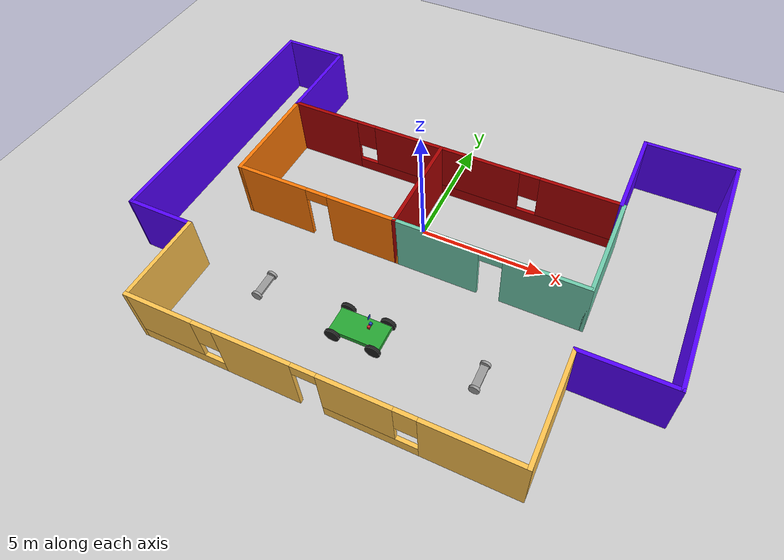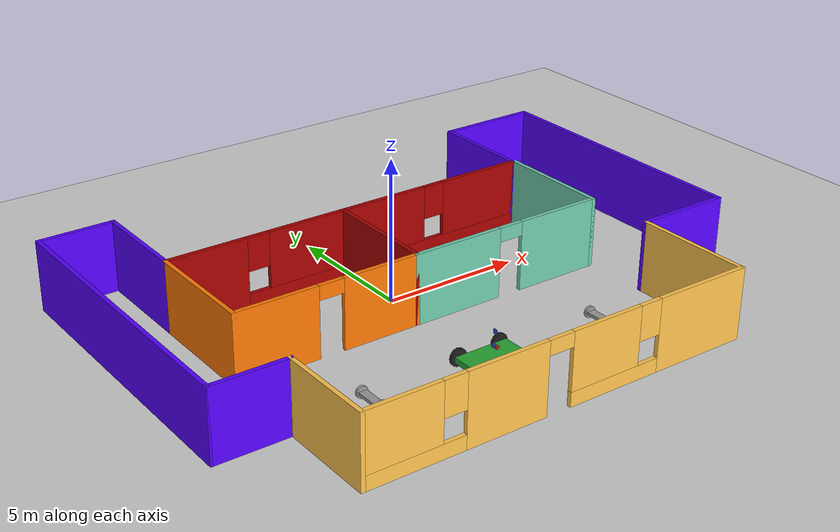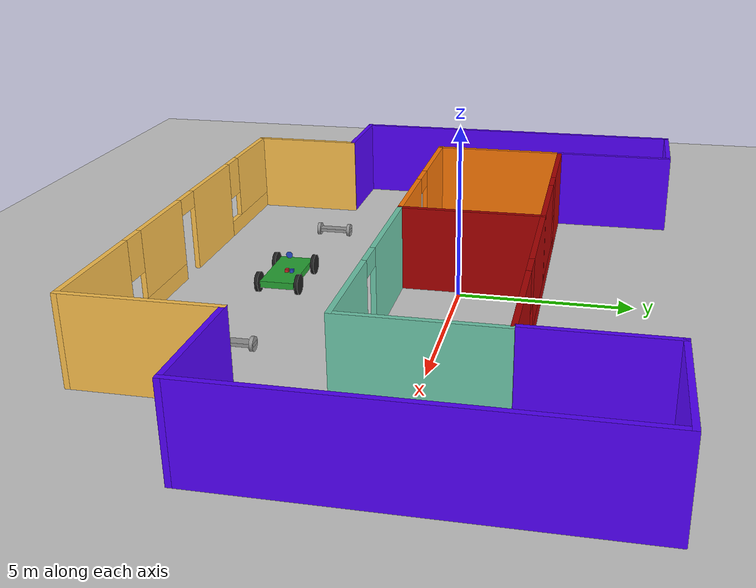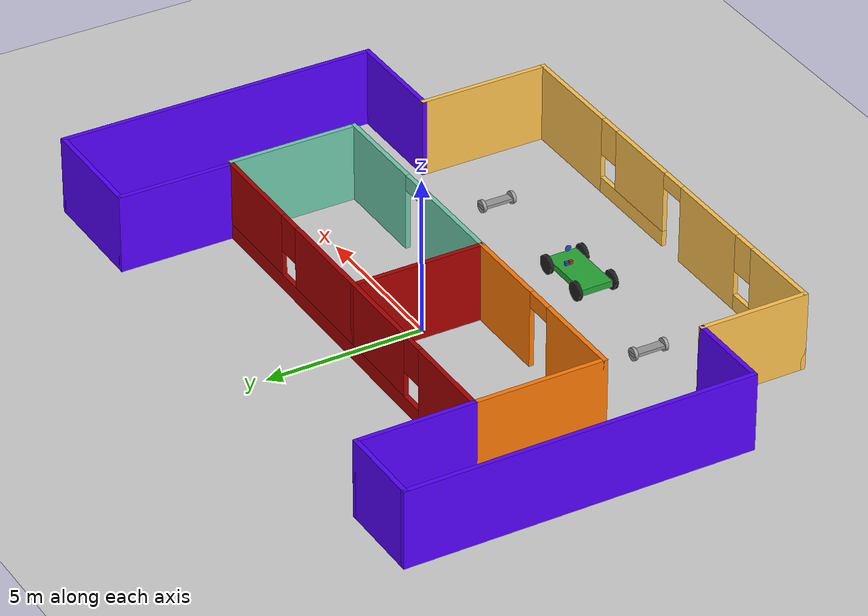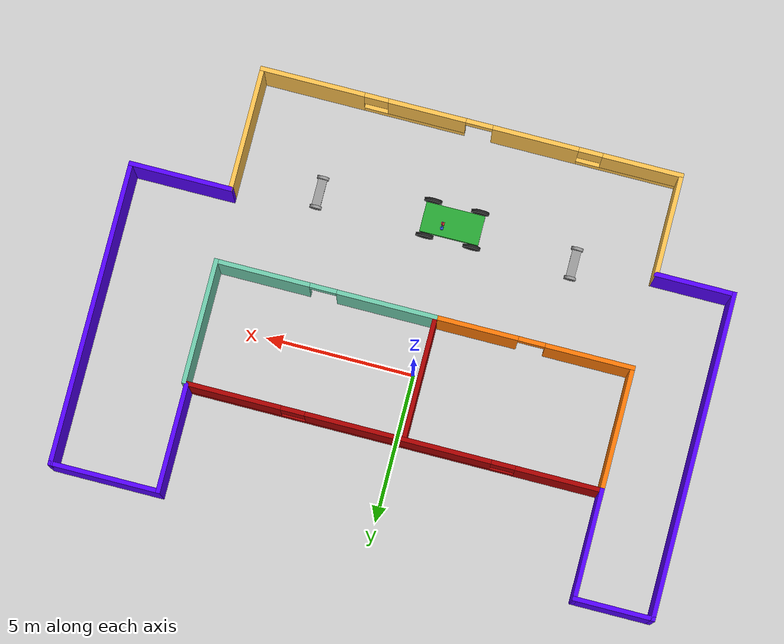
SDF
<sdf version="1.6">
 <world name="default">
  <plugin name="welcome_message" filename="libwelcome_message.so"/>
  <light name="sun" type="directional">
   <pose>0 0 10 0 -0 0</pose>
   <diffuse>0.8 0.8 0.8 1</diffuse>
   <specular>0.2 0.2 0.2 1</specular>
   <attenuation>
    <range>1000</range>
    <constant>0.9</constant>
    <linear>0.01</linear>
    <quadratic>0.001</quadratic>
   </attenuation>
   <direction>-0.5 0.1 -0.9</direction>
  </light>
  <model name="ground_plane">
   <static>1</static>
   <link name="link">
    <collision name="collision">
     <geometry><plane><normal>0 0 1</normal><size>100 100</size></plane></geometry>
     <surface>
      <contact><collide_bitmask>65535</collide_bitmask></contact>
      <friction><ode><mu>100</mu><mu2>50</mu2></ode></friction>
     </surface>
    </collision>
    <visual name="visual">
     <cast_shadows>0</cast_shadows>
     <geometry><plane><normal>0 0 1</normal><size>100 100</size></plane></geometry>
     <material>
      <script><uri>file://media/materials/scripts/gazebo.material</uri><name>Gazebo/Grey</name></script>
     </material>
    </visual>
   </link>
  </model>
  <gravity>0 0 -9.8</gravity>
  <magnetic_field>6e-06 2.3e-05 -4.2e-05</magnetic_field>
  <atmosphere type="adiabatic"/>
  <physics name="default_physics" default="0" type="ode">
   <max_step_size>0.001</max_step_size>
   <real_time_factor>1</real_time_factor>
   <real_time_update_rate>1000</real_time_update_rate>
  </physics>
  <scene><ambient>0.4 0.4 0.4 1</ambient><background>0.7 0.7 0.7 1</background><shadows>1</shadows></scene>
  <spherical_coordinates>
   <surface_model>EARTH_WGS84</surface_model>
   <latitude_deg>0</latitude_deg>
   <longitude_deg>0</longitude_deg>
   <elevation>0</elevation>
   <heading_deg>0</heading_deg>
  </spherical_coordinates>
  <model name="office">
   <pose>0.55118 -1.17371 0 0 -0 0</pose>
   <link name="Wall_1">
    <collision name="Wall_1_Collision">
     <geometry><box><size>2.75 0.15 2.5</size></box></geometry>
     <pose>0 0 1.25 0 -0 0</pose>
    </collision>
    <visual name="Wall_1_Visual">
     <pose>0 0 1.25 0 -0 0</pose>
     <geometry><box><size>2.75 0.15 2.5</size></box></geometry>
     <material>
      <script><uri>file://media/materials/scripts/gazebo.material</uri><name>Gazebo/Grey</name></script>
      <ambient>0.333333 0 1 1</ambient>
     </material>
     <meta><layer>0</layer></meta>
    </visual>
    <pose>-8.72481 7.09989 0 0 -0 0</pose>
   </link>
   <link name="Wall_10">
    <collision name="Wall_10_Collision">
     <geometry><box><size>3.5 0.15 2.5</size></box></geometry>
     <pose>0 0 1.25 0 -0 0</pose>
    </collision>
    <visual name="Wall_10_Visual">
     <pose>0 0 1.25 0 -0 0</pose>
     <geometry><box><size>3.5 0.15 2.5</size></box></geometry>
     <material>
      <script><uri>file://media/materials/scripts/gazebo.material</uri><name>Gazebo/Grey</name></script>
      <ambient>1 0.764706 0.305882 1</ambient>
     </material>
     <meta><layer>0</layer></meta>
    </visual>
    <pose>-7.42481 -5.42511 0 0 -0 1.5708</pose>
   </link>
   <link name="Wall_11">
    <collision name="Wall_11_Collision">
     <geometry><box><size>2.75 0.15 2.5</size></box></geometry>
     <pose>0 0 1.25 0 -0 0</pose>
    </collision>
    <visual name="Wall_11_Visual">
     <pose>0 0 1.25 0 -0 0</pose>
     <geometry><box><size>2.75 0.15 2.5</size></box></geometry>
     <material>
      <script><uri>file://media/materials/scripts/gazebo.material</uri><name>Gazebo/Grey</name></script>
      <ambient>0.333333 0 1 1</ambient>
     </material>
     <meta><layer>0</layer></meta>
    </visual>
    <pose>-8.725 -3.75 0 0 -0 3.14151</pose>
   </link>
   <link name="Wall_12">
    <collision name="Wall_12_Collision">
     <geometry><box><size>11 0.15 2.5</size></box></geometry>
     <pose>0 0 1.25 0 -0 0</pose>
    </collision>
    <visual name="Wall_12_Visual">
     <pose>0 0 1.25 0 -0 0</pose>
     <geometry><box><size>11 0.15 2.5</size></box></geometry>
     <material>
      <script><uri>file://media/materials/scripts/gazebo.material</uri><name>Gazebo/Grey</name></script>
      <ambient>0.333333 0 1 1</ambient>
     </material>
     <meta><layer>0</layer></meta>
    </visual>
    <pose>-10.0252 1.67511 0 0 -0 1.5708</pose>
   </link>
   <link name="Wall_14">
    <collision name="Wall_14_Collision">
     <geometry><box><size>4.25 0.15 2.5</size></box></geometry>
     <pose>0 0 1.25 0 -0 0</pose>
    </collision>
    <visual name="Wall_14_Visual">
     <pose>0 0 1.25 0 -0 0</pose>
     <geometry><box><size>4.25 0.15 2.5</size></box></geometry>
     <material>
      <script><uri>file://media/materials/scripts/gazebo.material</uri><name>Gazebo/Grey</name></script>
      <ambient>0.996078 0.47451 0.0196078 1</ambient>
     </material>
     <meta><layer>0</layer></meta>
    </visual>
    <pose>-7.42481 1.44989 0 0 0 -1.5708</pose>
   </link>
   <link name="Wall_15">
    <pose>-4.12481 -0.60011 0 0 -0 0</pose>
    <visual name="Wall_15_Visual_0">
     <pose>-1.87455 0 1.25 0 -0 0</pose>
     <geometry><box><size>3.0009 0.15 2.5</size></box></geometry>
     <material>
      <script><uri>file://media/materials/scripts/gazebo.material</uri><name>Gazebo/Grey</name></script>
      <ambient>0.996078 0.47451 0.0196078 1</ambient>
     </material>
     <meta><layer>0</layer></meta>
    </visual>
    <collision name="Wall_15_Collision_0">
     <geometry><box><size>3.0009 0.15 2.5</size></box></geometry>
     <pose>-1.87455 0 1.25 0 -0 0</pose>
    </collision>
    <visual name="Wall_15_Visual_1">
     <pose>1.95045 0 1.25 0 -0 0</pose>
     <geometry><box><size>2.8491 0.15 2.5</size></box></geometry>
     <material>
      <script><uri>file://media/materials/scripts/gazebo.material</uri><name>Gazebo/Grey</name></script>
      <ambient>0.996078 0.47451 0.0196078 1</ambient>
     </material>
     <meta><layer>0</layer></meta>
    </visual>
    <collision name="Wall_15_Collision_1">
     <geometry><box><size>2.8491 0.15 2.5</size></box></geometry>
     <pose>1.95045 0 1.25 0 -0 0</pose>
    </collision>
    <visual name="Wall_15_Visual_2">
     <pose>0.075898 0 2.25 0 -0 0</pose>
     <geometry><box><size>0.9 0.15 0.5</size></box></geometry>
     <material>
      <script><uri>file://media/materials/scripts/gazebo.material</uri><name>Gazebo/Grey</name></script>
      <ambient>0.996078 0.47451 0.0196078 1</ambient>
     </material>
     <meta><layer>0</layer></meta>
    </visual>
    <collision name="Wall_15_Collision_2">
     <geometry><box><size>0.9 0.15 0.5</size></box></geometry>
     <pose>0.075898 0 2.25 0 -0 0</pose>
    </collision>
   </link>
   <link name="Wall_16">
    <collision name="Wall_16_Collision">
     <geometry><box><size>4.25 0.15 2.5</size></box></geometry>
     <pose>0 0 1.25 0 -0 0</pose>
    </collision>
    <visual name="Wall_16_Visual">
     <pose>0 0 1.25 0 -0 0</pose>
     <geometry><box><size>4.25 0.15 2.5</size></box></geometry>
     <material>
      <script><uri>file://media/materials/scripts/gazebo.material</uri><name>Gazebo/Grey</name></script>
      <ambient>0.666667 0 0 1</ambient>
     </material>
     <meta><layer>0</layer></meta>
    </visual>
    <pose>-0.824806 1.44989 0 0 -0 1.5708</pose>
   </link>
   <link name="Wall_2">
    <collision name="Wall_2_Collision">
     <geometry><box><size>3.75 0.15 2.5</size></box></geometry>
     <pose>0 0 1.25 0 -0 0</pose>
    </collision>
    <visual name="Wall_2_Visual">
     <pose>0 0 1.25 0 -0 0</pose>
     <geometry><box><size>3.75 0.15 2.5</size></box></geometry>
     <material>
      <script><uri>file://media/materials/scripts/gazebo.material</uri><name>Gazebo/Grey</name></script>
      <ambient>0.333333 0 1 1</ambient>
     </material>
     <meta><layer>0</layer></meta>
    </visual>
    <pose>-7.42481 5.29989 0 0 0 -1.5708</pose>
   </link>
   <link name="Wall_20">
    <pose>2.85019 -0.60011 0 0 -0 0</pose>
    <visual name="Wall_20_Visual_0">
     <pose>-2.06026 0 1.25 0 -0 0</pose>
     <geometry><box><size>3.37949 0.15 2.5</size></box></geometry>
     <material>
      <script><uri>file://media/materials/scripts/gazebo.material</uri><name>Gazebo/Grey</name></script>
      <ambient>0.435294 0.796078 0.67451 1</ambient>
     </material>
     <meta><layer>0</layer></meta>
    </visual>
    <collision name="Wall_20_Collision_0">
     <geometry><box><size>3.37949 0.15 2.5</size></box></geometry>
     <pose>-2.06026 0 1.25 0 -0 0</pose>
    </collision>
    <visual name="Wall_20_Visual_1">
     <pose>2.13974 0 1.25 0 -0 0</pose>
     <geometry><box><size>3.22051 0.15 2.5</size></box></geometry>
     <material>
      <script><uri>file://media/materials/scripts/gazebo.material</uri><name>Gazebo/Grey</name></script>
      <ambient>0.435294 0.796078 0.67451 1</ambient>
     </material>
     <meta><layer>0</layer></meta>
    </visual>
    <collision name="Wall_20_Collision_1">
     <geometry><box><size>3.22051 0.15 2.5</size></box></geometry>
     <pose>2.13974 0 1.25 0 -0 0</pose>
    </collision>
    <visual name="Wall_20_Visual_2">
     <pose>0.079486 0 2.25 0 -0 0</pose>
     <geometry><box><size>0.9 0.15 0.5</size></box></geometry>
     <material>
      <script><uri>file://media/materials/scripts/gazebo.material</uri><name>Gazebo/Grey</name></script>
      <ambient>0.435294 0.796078 0.67451 1</ambient>
     </material>
     <meta><layer>0</layer></meta>
    </visual>
    <collision name="Wall_20_Collision_2">
     <geometry><box><size>0.9 0.15 0.5</size></box></geometry>
     <pose>0.079486 0 2.25 0 -0 0</pose>
    </collision>
   </link>
   <link name="Wall_21">
    <collision name="Wall_21_Collision">
     <geometry><box><size>4.2 0.15 2.5</size></box></geometry>
     <pose>0 0 1.25 0 -0 0</pose>
    </collision>
    <visual name="Wall_21_Visual">
     <pose>0 0 1.25 0 -0 0</pose>
     <geometry><box><size>4.2 0.15 2.5</size></box></geometry>
     <material>
      <script><uri>file://media/materials/scripts/gazebo.material</uri><name>Gazebo/Grey</name></script>
      <ambient>0.435294 0.796078 0.67451 1</ambient>
     </material>
     <meta><layer>0</layer></meta>
    </visual>
    <pose>6.52519 1.42489 0 0 -0 1.5708</pose>
   </link>
   <link name="Wall_3">
    <pose>-0.499807 3.49989 0 0 -0 0</pose>
    <visual name="Wall_3_Visual_0">
     <pose>-5.52107 0 1.25 0 -0 0</pose>
     <geometry><box><size>2.95785 0.15 2.5</size></box></geometry>
     <material>
      <script><uri>file://media/materials/scripts/gazebo.material</uri><name>Gazebo/Grey</name></script>
      <ambient>0.666667 0 0 1</ambient>
     </material>
     <meta><layer>0</layer></meta>
    </visual>
    <collision name="Wall_3_Collision_0">
     <geometry><box><size>2.95785 0.15 2.5</size></box></geometry>
     <pose>-5.52107 0 1.25 0 -0 0</pose>
    </collision>
    <visual name="Wall_3_Visual_1">
     <pose>1.47893 0 0.25 0 -0 0</pose>
     <geometry><box><size>11.0421 0.15 0.5</size></box></geometry>
     <material>
      <script><uri>file://media/materials/scripts/gazebo.material</uri><name>Gazebo/Grey</name></script>
      <ambient>0.666667 0 0 1</ambient>
     </material>
     <meta><layer>0</layer></meta>
    </visual>
    <collision name="Wall_3_Collision_1">
     <geometry><box><size>11.0421 0.15 0.5</size></box></geometry>
     <pose>1.47893 0 0.25 0 -0 0</pose>
    </collision>
    <visual name="Wall_3_Visual_2">
     <pose>-0.129594 0 1.5 0 -0 0</pose>
     <geometry><box><size>6.22511 0.15 2</size></box></geometry>
     <material>
      <script><uri>file://media/materials/scripts/gazebo.material</uri><name>Gazebo/Grey</name></script>
      <ambient>0.666667 0 0 1</ambient>
     </material>
     <meta><layer>0</layer></meta>
    </visual>
    <collision name="Wall_3_Collision_2">
     <geometry><box><size>6.22511 0.15 2</size></box></geometry>
     <pose>-0.129594 0 1.5 0 -0 0</pose>
    </collision>
    <visual name="Wall_3_Visual_3">
     <pose>5.39148 0 1.5 0 -0 0</pose>
     <geometry><box><size>3.21704 0.15 2</size></box></geometry>
     <material>
      <script><uri>file://media/materials/scripts/gazebo.material</uri><name>Gazebo/Grey</name></script>
      <ambient>0.666667 0 0 1</ambient>
     </material>
     <meta><layer>0</layer></meta>
    </visual>
    <collision name="Wall_3_Collision_3">
     <geometry><box><size>3.21704 0.15 2</size></box></geometry>
     <pose>5.39148 0 1.5 0 -0 0</pose>
    </collision>
    <visual name="Wall_3_Visual_4">
     <pose>-3.64215 0 1.9 0 -0 0</pose>
     <geometry><box><size>0.8 0.15 1.2</size></box></geometry>
     <material>
      <script><uri>file://media/materials/scripts/gazebo.material</uri><name>Gazebo/Grey</name></script>
      <ambient>0.666667 0 0 1</ambient>
     </material>
     <meta><layer>0</layer></meta>
    </visual>
    <collision name="Wall_3_Collision_4">
     <geometry><box><size>0.8 0.15 1.2</size></box></geometry>
     <pose>-3.64215 0 1.9 0 -0 0</pose>
    </collision>
    <visual name="Wall_3_Visual_5">
     <pose>3.38296 0 1.9 0 -0 0</pose>
     <geometry><box><size>0.8 0.15 1.2</size></box></geometry>
     <material>
      <script><uri>file://media/materials/scripts/gazebo.material</uri><name>Gazebo/Grey</name></script>
      <ambient>0.666667 0 0 1</ambient>
     </material>
     <meta><layer>0</layer></meta>
    </visual>
    <collision name="Wall_3_Collision_5">
     <geometry><box><size>0.8 0.15 1.2</size></box></geometry>
     <pose>3.38296 0 1.9 0 -0 0</pose>
    </collision>
   </link>
   <link name="Wall_4">
    <collision name="Wall_4_Collision">
     <geometry><box><size>3.75 0.15 2.5</size></box></geometry>
     <pose>0 0 1.25 0 -0 0</pose>
    </collision>
    <visual name="Wall_4_Visual">
     <pose>0 0 1.25 0 -0 0</pose>
     <geometry><box><size>3.75 0.15 2.5</size></box></geometry>
     <material>
      <script><uri>file://media/materials/scripts/gazebo.material</uri><name>Gazebo/Grey</name></script>
      <ambient>0.333333 0 1 1</ambient>
     </material>
     <meta><layer>0</layer></meta>
    </visual>
    <pose>6.42519 5.29989 0 0 -0 1.5708</pose>
   </link>
   <link name="Wall_5">
    <collision name="Wall_5_Collision">
     <geometry><box><size>3.75 0.15 2.5</size></box></geometry>
     <pose>0 0 1.25 0 -0 0</pose>
    </collision>
    <visual name="Wall_5_Visual">
     <pose>0 0 1.25 0 -0 0</pose>
     <geometry><box><size>3.75 0.15 2.5</size></box></geometry>
     <material>
      <script><uri>file://media/materials/scripts/gazebo.material</uri><name>Gazebo/Grey</name></script>
      <ambient>0.333333 0 1 1</ambient>
     </material>
     <meta><layer>0</layer></meta>
    </visual>
    <pose>8.22519 7.09989 0 0 -0 0</pose>
   </link>
   <link name="Wall_6">
    <collision name="Wall_6_Collision">
     <geometry><box><size>10.25 0.15 2.5</size></box></geometry>
     <pose>0 0 1.25 0 -0 0</pose>
    </collision>
    <visual name="Wall_6_Visual">
     <pose>0 0 1.25 0 -0 0</pose>
     <geometry><box><size>10.25 0.15 2.5</size></box></geometry>
     <material>
      <script><uri>file://media/materials/scripts/gazebo.material</uri><name>Gazebo/Grey</name></script>
      <ambient>0.333333 0 1 1</ambient>
     </material>
     <meta><layer>0</layer></meta>
    </visual>
    <pose>10.0252 2.04989 0 0 0 -1.5708</pose>
   </link>
   <link name="Wall_7">
    <collision name="Wall_7_Collision">
     <geometry><box><size>3.5 0.15 2.5</size></box></geometry>
     <pose>0 0 1.25 0 -0 0</pose>
    </collision>
    <visual name="Wall_7_Visual">
     <pose>0 0 1.25 0 -0 0</pose>
     <geometry><box><size>3.5 0.15 2.5</size></box></geometry>
     <material>
      <script><uri>file://media/materials/scripts/gazebo.material</uri><name>Gazebo/Grey</name></script>
      <ambient>0.333333 0 1 1</ambient>
     </material>
     <meta><layer>0</layer></meta>
    </visual>
    <pose>8.35019 -3.00011 0 0 -0 3.14159</pose>
   </link>
   <link name="Wall_8">
    <collision name="Wall_8_Collision">
     <geometry><box><size>4.25 0.15 2.5</size></box></geometry>
     <pose>0 0 1.25 0 -0 0</pose>
    </collision>
    <visual name="Wall_8_Visual">
     <pose>0 0 1.25 0 -0 0</pose>
     <geometry><box><size>4.25 0.15 2.5</size></box></geometry>
     <material>
      <script><uri>file://media/materials/scripts/gazebo.material</uri><name>Gazebo/Grey</name></script>
      <ambient>1 0.764706 0.305882 1</ambient>
     </material>
     <meta><layer>0</layer></meta>
    </visual>
    <pose>6.67519 -5.05011 0 0 0 -1.5708</pose>
   </link>
   <link name="Wall_9">
    <pose>-0.374807 -7.10011 0 0 -0 3.14159</pose>
    <visual name="Wall_9_Visual_0">
     <pose>-5.36218 0 1.25 0 -0 0</pose>
     <geometry><box><size>3.52564 0.15 2.5</size></box></geometry>
     <material>
      <script><uri>file://media/materials/scripts/gazebo.material</uri><name>Gazebo/Grey</name></script>
      <ambient>1 0.764706 0.305882 1</ambient>
     </material>
     <meta><layer>0</layer></meta>
    </visual>
    <collision name="Wall_9_Collision_0">
     <geometry><box><size>3.52564 0.15 2.5</size></box></geometry>
     <pose>-5.36218 0 1.25 0 -0 0</pose>
    </collision>
    <visual name="Wall_9_Visual_1">
     <pose>2.15948 0 1.25 0 -0 0</pose>
     <geometry><box><size>2.89305 0.15 2.5</size></box></geometry>
     <material>
      <script><uri>file://media/materials/scripts/gazebo.material</uri><name>Gazebo/Grey</name></script>
      <ambient>1 0.764706 0.305882 1</ambient>
     </material>
     <meta><layer>0</layer></meta>
    </visual>
    <collision name="Wall_9_Collision_1">
     <geometry><box><size>2.89305 0.15 2.5</size></box></geometry>
     <pose>2.15948 0 1.25 0 -0 0</pose>
    </collision>
    <visual name="Wall_9_Visual_2">
     <pose>-1.8932 0 0.25 0 -0 0</pose>
     <geometry><box><size>3.41232 0.15 0.5</size></box></geometry>
     <material>
      <script><uri>file://media/materials/scripts/gazebo.material</uri><name>Gazebo/Grey</name></script>
      <ambient>1 0.764706 0.305882 1</ambient>
     </material>
     <meta><layer>0</layer></meta>
    </visual>
    <collision name="Wall_9_Collision_2">
     <geometry><box><size>3.41232 0.15 0.5</size></box></geometry>
     <pose>-1.8932 0 0.25 0 -0 0</pose>
    </collision>
    <visual name="Wall_9_Visual_3">
     <pose>5.3655 0 0.25 0 -0 0</pose>
     <geometry><box><size>3.51899 0.15 0.5</size></box></geometry>
     <material>
      <script><uri>file://media/materials/scripts/gazebo.material</uri><name>Gazebo/Grey</name></script>
      <ambient>1 0.764706 0.305882 1</ambient>
     </material>
     <meta><layer>0</layer></meta>
    </visual>
    <collision name="Wall_9_Collision_3">
     <geometry><box><size>3.51899 0.15 0.5</size></box></geometry>
     <pose>5.3655 0 0.25 0 -0 0</pose>
    </collision>
    <visual name="Wall_9_Visual_4">
     <pose>-1.4932 0 1.5 0 -0 0</pose>
     <geometry><box><size>2.61232 0.15 2</size></box></geometry>
     <material>
      <script><uri>file://media/materials/scripts/gazebo.material</uri><name>Gazebo/Grey</name></script>
      <ambient>1 0.764706 0.305882 1</ambient>
     </material>
     <meta><layer>0</layer></meta>
    </visual>
    <collision name="Wall_9_Collision_4">
     <geometry><box><size>2.61232 0.15 2</size></box></geometry>
     <pose>-1.4932 0 1.5 0 -0 0</pose>
    </collision>
    <visual name="Wall_9_Visual_5">
     <pose>-1.4932 0 1.5 0 -0 0</pose>
     <geometry><box><size>2.61232 0.15 2</size></box></geometry>
     <material>
      <script><uri>file://media/materials/scripts/gazebo.material</uri><name>Gazebo/Grey</name></script>
      <ambient>1 0.764706 0.305882 1</ambient>
     </material>
     <meta><layer>0</layer></meta>
    </visual>
    <collision name="Wall_9_Collision_5">
     <geometry><box><size>2.61232 0.15 2</size></box></geometry>
     <pose>-1.4932 0 1.5 0 -0 0</pose>
    </collision>
    <visual name="Wall_9_Visual_6">
     <pose>5.7655 0 1.5 0 -0 0</pose>
     <geometry><box><size>2.71899 0.15 2</size></box></geometry>
     <material>
      <script><uri>file://media/materials/scripts/gazebo.material</uri><name>Gazebo/Grey</name></script>
      <ambient>1 0.764706 0.305882 1</ambient>
     </material>
     <meta><layer>0</layer></meta>
    </visual>
    <collision name="Wall_9_Collision_6">
     <geometry><box><size>2.71899 0.15 2</size></box></geometry>
     <pose>5.7655 0 1.5 0 -0 0</pose>
    </collision>
    <visual name="Wall_9_Visual_7">
     <pose>-3.19936 0 1.9 0 -0 0</pose>
     <geometry><box><size>0.8 0.15 1.2</size></box></geometry>
     <material>
      <script><uri>file://media/materials/scripts/gazebo.material</uri><name>Gazebo/Grey</name></script>
      <ambient>1 0.764706 0.305882 1</ambient>
     </material>
     <meta><layer>0</layer></meta>
    </visual>
    <collision name="Wall_9_Collision_7">
     <geometry><box><size>0.8 0.15 1.2</size></box></geometry>
     <pose>-3.19936 0 1.9 0 -0 0</pose>
    </collision>
    <visual name="Wall_9_Visual_8">
     <pose>4.00601 0 1.9 0 -0 0</pose>
     <geometry><box><size>0.8 0.15 1.2</size></box></geometry>
     <material>
      <script><uri>file://media/materials/scripts/gazebo.material</uri><name>Gazebo/Grey</name></script>
      <ambient>1 0.764706 0.305882 1</ambient>
     </material>
     <meta><layer>0</layer></meta>
    </visual>
    <collision name="Wall_9_Collision_8">
     <geometry><box><size>0.8 0.15 1.2</size></box></geometry>
     <pose>4.00601 0 1.9 0 -0 0</pose>
    </collision>
    <visual name="Wall_9_Visual_9">
     <pose>0.262957 0 2.25 0 -0 0</pose>
     <geometry><box><size>0.9 0.15 0.5</size></box></geometry>
     <material>
      <script><uri>file://media/materials/scripts/gazebo.material</uri><name>Gazebo/Grey</name></script>
      <ambient>1 0.764706 0.305882 1</ambient>
     </material>
     <meta><layer>0</layer></meta>
    </visual>
    <collision name="Wall_9_Collision_9">
     <geometry><box><size>0.9 0.15 0.5</size></box></geometry>
     <pose>0.262957 0 2.25 0 -0 0</pose>
    </collision>
    <visual name="Wall_9_Visual_10">
     <pose>0.262957 0 2.25 0 -0 0</pose>
     <geometry><box><size>0.9 0.15 0.5</size></box></geometry>
     <material>
      <script><uri>file://media/materials/scripts/gazebo.material</uri><name>Gazebo/Grey</name></script>
      <ambient>1 0.764706 0.305882 1</ambient>
     </material>
     <meta><layer>0</layer></meta>
    </visual>
    <collision name="Wall_9_Collision_10">
     <geometry><box><size>0.9 0.15 0.5</size></box></geometry>
     <pose>0.262957 0 2.25 0 -0 0</pose>
    </collision>
   </link>
   <static>1</static>
  </model>
  <model name="cart_0">
   <model name="car">
    <link name="chassis">
     <pose>0 0 0.3 0 -0 0</pose>
     <collision name="collision"><geometry><box><size>2 1 0.2</size></box></geometry></collision>
     <visual name="visual">
      <geometry><box><size>2 1 0.2</size></box></geometry>
      <material>
       <script><uri>file://media/materials/scripts/gazebo.material</uri><name>Gazebo/Green</name></script>
      </material>
     </visual>
     <inertial>
      <inertia><ixx>1</ixx><ixy>0</ixy><ixz>0</ixz><iyy>1</iyy><iyz>0</iyz><izz>1</izz></inertia>
      <mass>1</mass>
     </inertial>
    </link>
    <link name="front_left_wheel">
     <pose>0.8 0.6 0.3 -0 1.5707 1.5707</pose>
     <collision name="collision">
      <geometry><cylinder><radius>0.3</radius><length>0.1</length></cylinder></geometry>
     </collision>
     <visual name="visual">
      <geometry><cylinder><radius>0.3</radius><length>0.1</length></cylinder></geometry>
      <material>
       <script><uri>file://media/materials/scripts/gazebo.material</uri><name>Gazebo/Black</name></script>
      </material>
     </visual>
     <inertial>
      <inertia><ixx>1</ixx><ixy>0</ixy><ixz>0</ixz><iyy>1</iyy><iyz>0</iyz><izz>1</izz></inertia>
      <mass>1</mass>
     </inertial>
    </link>
    <link name="front_right_wheel">
     <pose>0.8 -0.6 0.3 -0 1.5707 1.5707</pose>
     <collision name="collision">
      <geometry><cylinder><radius>0.3</radius><length>0.1</length></cylinder></geometry>
     </collision>
     <visual name="visual">
      <geometry><cylinder><radius>0.3</radius><length>0.1</length></cylinder></geometry>
      <material>
       <script><uri>file://media/materials/scripts/gazebo.material</uri><name>Gazebo/Black</name></script>
      </material>
     </visual>
     <inertial>
      <inertia><ixx>1</ixx><ixy>0</ixy><ixz>0</ixz><iyy>1</iyy><iyz>0</iyz><izz>1</izz></inertia>
      <mass>1</mass>
     </inertial>
    </link>
    <link name="back_right_wheel">
     <pose>-0.8 -0.6 0.3 -0 1.5707 1.5707</pose>
     <collision name="collision">
      <geometry><cylinder><radius>0.3</radius><length>0.1</length></cylinder></geometry>
     </collision>
     <visual name="visual">
      <geometry><cylinder><radius>0.3</radius><length>0.1</length></cylinder></geometry>
      <material>
       <script><uri>file://media/materials/scripts/gazebo.material</uri><name>Gazebo/Black</name></script>
      </material>
     </visual>
     <inertial>
      <inertia><ixx>1</ixx><ixy>0</ixy><ixz>0</ixz><iyy>1</iyy><iyz>0</iyz><izz>1</izz></inertia>
      <mass>1</mass>
     </inertial>
    </link>
    <link name="back_left_wheel">
     <pose>-0.8 0.6 0.3 -0 1.5707 1.5707</pose>
     <collision name="collision">
      <geometry><cylinder><radius>0.3</radius><length>0.1</length></cylinder></geometry>
     </collision>
     <visual name="visual">
      <geometry><cylinder><radius>0.3</radius><length>0.1</length></cylinder></geometry>
      <material>
       <script><uri>file://media/materials/scripts/gazebo.material</uri><name>Gazebo/Black</name></script>
      </material>
     </visual>
     <inertial>
      <inertia><ixx>1</ixx><ixy>0</ixy><ixz>0</ixz><iyy>1</iyy><iyz>0</iyz><izz>1</izz></inertia>
      <mass>1</mass>
     </inertial>
    </link>
    <link name="gas_pedal">
     <pose>0.3 0.1 0.5 0 -0 0</pose>
     <collision name="collision"><geometry><box><size>0.1 0.1 0.1</size></box></geometry></collision>
     <visual name="visual">
      <geometry><box><size>0.1 0.1 0.1</size></box></geometry>
      <material>
       <script><uri>file://media/materials/scripts/gazebo.material</uri><name>Gazebo/Red</name></script>
      </material>
     </visual>
     <inertial>
      <inertia><ixx>1</ixx><ixy>0</ixy><ixz>0</ixz><iyy>1</iyy><iyz>0</iyz><izz>1</izz></inertia>
      <mass>1</mass>
     </inertial>
    </link>
    <link name="brake_pedal">
     <pose>0.3 0.25 0.5 0 -0 0</pose>
     <collision name="collision"><geometry><box><size>0.1 0.1 0.1</size></box></geometry></collision>
     <visual name="visual">
      <geometry><box><size>0.1 0.1 0.1</size></box></geometry>
      <material>
       <script><uri>file://media/materials/scripts/gazebo.material</uri><name>Gazebo/Blue</name></script>
      </material>
     </visual>
     <inertial>
      <inertia><ixx>1</ixx><ixy>0</ixy><ixz>0</ixz><iyy>1</iyy><iyz>0</iyz><izz>1</izz></inertia>
      <mass>1</mass>
     </inertial>
    </link>
    <link name="steering_wheel">
     <pose>0.3 0.2 1 0 1.5707 0</pose>
     <collision name="collision">
      <geometry><cylinder><radius>0.1</radius><length>0.01</length></cylinder></geometry>
     </collision>
     <visual name="visual">
      <geometry><cylinder><radius>0.1</radius><length>0.01</length></cylinder></geometry>
      <material>
       <script><uri>file://media/materials/scripts/gazebo.material</uri><name>Gazebo/Blue</name></script>
      </material>
     </visual>
     <inertial>
      <inertia><ixx>1</ixx><ixy>0</ixy><ixz>0</ixz><iyy>1</iyy><iyz>0</iyz><izz>1</izz></inertia>
      <mass>1</mass>
     </inertial>
    </link>
    <joint name="gas_joint" type="prismatic">
     <parent>chassis</parent>
     <child>gas_pedal</child>
     <axis>
      <xyz>1 0 0</xyz>
      <limit><lower>0</lower><upper>0.2</upper></limit>
      <use_parent_model_frame>1</use_parent_model_frame>
      <dynamics><spring_reference>0</spring_reference><spring_stiffness>0</spring_stiffness></dynamics>
     </axis>
    </joint>
    <joint name="brake_joint" type="prismatic">
     <parent>chassis</parent>
     <child>brake_pedal</child>
     <axis>
      <xyz>1 0 0</xyz>
      <limit><lower>0</lower><upper>0.2</upper></limit>
      <use_parent_model_frame>1</use_parent_model_frame>
      <dynamics><spring_reference>0</spring_reference><spring_stiffness>0</spring_stiffness></dynamics>
     </axis>
    </joint>
    <joint name="steering_joint" type="revolute">
     <parent>chassis</parent>
     <child>steering_wheel</child>
     <axis>
      <xyz>1 0 0</xyz>
      <limit><lower>-7.853</lower><upper>7.853</upper></limit>
      <use_parent_model_frame>1</use_parent_model_frame>
      <dynamics><spring_reference>0</spring_reference><spring_stiffness>0</spring_stiffness></dynamics>
     </axis>
    </joint>
    <joint name="front_left_joint" type="revolute2">
     <parent>chassis</parent>
     <child>front_left_wheel</child>
     <axis>
      <xyz>0 0 1</xyz>
      <limit><lower>8.64231e-06</lower><upper>8.64231e-06</upper></limit>
      <use_parent_model_frame>1</use_parent_model_frame>
      <dynamics><spring_reference>0</spring_reference><spring_stiffness>0</spring_stiffness></dynamics>
     </axis>
     <axis2>
      <xyz>0 1 0</xyz>
      <use_parent_model_frame>1</use_parent_model_frame>
      <dynamics><spring_reference>0</spring_reference><spring_stiffness>0</spring_stiffness></dynamics>
     </axis2>
     <physics><ode><limit><cfm>0</cfm><erp>0.9</erp></limit></ode></physics>
    </joint>
    <joint name="front_right_joint" type="revolute2">
     <parent>chassis</parent>
     <child>front_right_wheel</child>
     <axis>
      <xyz>0 0 1</xyz>
      <limit><lower>8.64231e-06</lower><upper>8.64231e-06</upper></limit>
      <use_parent_model_frame>1</use_parent_model_frame>
      <dynamics><spring_reference>0</spring_reference><spring_stiffness>0</spring_stiffness></dynamics>
     </axis>
     <axis2>
      <xyz>0 1 0</xyz>
      <use_parent_model_frame>1</use_parent_model_frame>
      <dynamics><spring_reference>0</spring_reference><spring_stiffness>0</spring_stiffness></dynamics>
     </axis2>
     <physics><ode><limit><cfm>0</cfm><erp>0.9</erp></limit></ode></physics>
    </joint>
    <joint name="back_right_joint" type="revolute2">
     <parent>chassis</parent>
     <child>back_right_wheel</child>
     <axis>
      <xyz>0 0 1</xyz>
      <limit><lower>0</lower><upper>0</upper></limit>
      <use_parent_model_frame>1</use_parent_model_frame>
      <dynamics><spring_reference>0</spring_reference><spring_stiffness>0</spring_stiffness></dynamics>
     </axis>
     <axis2>
      <xyz>0 1 0</xyz>
      <use_parent_model_frame>1</use_parent_model_frame>
      <dynamics><spring_reference>0</spring_reference><spring_stiffness>0</spring_stiffness></dynamics>
     </axis2>
     <physics><ode><limit><cfm>0</cfm><erp>0.9</erp></limit></ode></physics>
    </joint>
    <joint name="back_left_joint" type="revolute2">
     <parent>chassis</parent>
     <child>back_left_wheel</child>
     <axis>
      <xyz>0 0 1</xyz>
      <limit><lower>0</lower><upper>0</upper></limit>
      <use_parent_model_frame>1</use_parent_model_frame>
      <dynamics><spring_reference>0</spring_reference><spring_stiffness>0</spring_stiffness></dynamics>
     </axis>
     <axis2>
      <xyz>0 1 0</xyz>
      <use_parent_model_frame>1</use_parent_model_frame>
      <dynamics><spring_reference>0</spring_reference><spring_stiffness>0</spring_stiffness></dynamics>
     </axis2>
     <physics><ode><limit><cfm>0</cfm><erp>0.9</erp></limit></ode></physics>
    </joint>
    <plugin name="vehicle" filename="libVehiclePlugin.so">
     <front_left>front_left_joint</front_left>
     <front_right>front_right_joint</front_right>
     <back_left>back_left_joint</back_left>
     <back_right>back_right_joint</back_right>
     <gas>gas_joint</gas>
     <brake>brake_joint</brake>
     <steering>steering_joint</steering>
     <front_power>10</front_power>
     <rear_power>10</rear_power>
     <tire_angle_range>0.5</tire_angle_range>
     <max_speed>10</max_speed>
     <aero_load>0.1</aero_load>
    </plugin>
   </model>
   <static>0</static>
   <pose>-0.00093 -5.18272 7e-06 1e-06 -1e-06 0.003585</pose>
  </model>
  <model name="two_wheels">
   <link name="link_0">
    <pose>0 0.033346 0 0 -0 0</pose>
    <inertial>
     <mass>1</mass>
     <inertia>
      <ixx>0.166667</ixx>
      <ixy>0</ixy>
      <ixz>0</ixz>
      <iyy>0.166667</iyy>
      <iyz>0</iyz>
      <izz>0.166667</izz>
     </inertia>
    </inertial>
    <visual name="visual">
     <geometry><box><size>0.3 1 0.1</size></box></geometry>
     <material>
      <lighting>1</lighting>
      <script><uri>file://media/materials/scripts/gazebo.material</uri><name>Gazebo/Grey</name></script>
      <shader type="pixel"><normal_map>__default__</normal_map></shader>
      <ambient>0.3 0.3 0.3 1</ambient>
      <diffuse>0.7 0.7 0.7 1</diffuse>
      <specular>0.01 0.01 0.01 1</specular>
      <emissive>0 0 0 1</emissive>
     </material>
    </visual>
    <collision name="collision">
     <geometry><box><size>0.3 1 0.1</size></box></geometry>
     <surface>
      <friction>
       <ode><mu>1</mu><mu2>1</mu2><fdir1>0 0 0</fdir1><slip1>0</slip1><slip2>0</slip2></ode>
       <torsional>
        <coefficient>1</coefficient>
        <patch_radius>0</patch_radius>
        <surface_radius>0</surface_radius>
        <use_patch_radius>1</use_patch_radius>
        <ode><slip>0</slip></ode>
       </torsional>
      </friction>
      <bounce><restitution_coefficient>0</restitution_coefficient><threshold>1e+06</threshold></bounce>
      <contact>
       <collide_without_contact>0</collide_without_contact>
       <collide_without_contact_bitmask>1</collide_without_contact_bitmask>
       <collide_bitmask>1</collide_bitmask>
       <ode>
        <soft_cfm>0</soft_cfm>
        <soft_erp>0.2</soft_erp>
        <kp>1e+13</kp>
        <kd>1</kd>
        <max_vel>0.01</max_vel>
        <min_depth>0</min_depth>
       </ode>
       <bullet>
        <split_impulse>1</split_impulse>
        <split_impulse_penetration_threshold>-0.01</split_impulse_penetration_threshold>
        <soft_cfm>0</soft_cfm>
        <soft_erp>0.2</soft_erp>
        <kp>1e+13</kp>
        <kd>1</kd>
       </bullet>
      </contact>
     </surface>
    </collision>
   </link>
   <link name="link_1">
    <pose>0 -0.516673 0 1.5707 -0 0</pose>
    <inertial>
     <mass>1</mass>
     <inertia><ixx>0.145833</ixx><ixy>0</ixy><ixz>0</ixz><iyy>0.145833</iyy><iyz>0</iyz><izz>0.125</izz></inertia>
    </inertial>
    <visual name="visual">
     <geometry><cylinder><radius>0.2</radius><length>0.1</length></cylinder></geometry>
     <material>
      <lighting>1</lighting>
      <script><uri>file://media/materials/scripts/gazebo.material</uri><name>Gazebo/Grey</name></script>
      <shader type="pixel"><normal_map>__default__</normal_map></shader>
      <ambient>0.3 0.3 0.3 1</ambient>
      <diffuse>0.7 0.7 0.7 1</diffuse>
      <specular>0.01 0.01 0.01 1</specular>
      <emissive>0 0 0 1</emissive>
     </material>
    </visual>
    <collision name="collision">
     <geometry><cylinder><radius>0.2</radius><length>0.1</length></cylinder></geometry>
     <surface>
      <friction>
       <ode><mu>1</mu><mu2>1</mu2><fdir1>0 0 0</fdir1><slip1>0</slip1><slip2>0</slip2></ode>
       <torsional>
        <coefficient>1</coefficient>
        <patch_radius>0</patch_radius>
        <surface_radius>0</surface_radius>
        <use_patch_radius>1</use_patch_radius>
        <ode><slip>0</slip></ode>
       </torsional>
      </friction>
      <bounce><restitution_coefficient>0</restitution_coefficient><threshold>1e+06</threshold></bounce>
      <contact>
       <collide_without_contact>0</collide_without_contact>
       <collide_without_contact_bitmask>1</collide_without_contact_bitmask>
       <collide_bitmask>1</collide_bitmask>
       <ode>
        <soft_cfm>0</soft_cfm>
        <soft_erp>0.2</soft_erp>
        <kp>1e+13</kp>
        <kd>1</kd>
        <max_vel>0.01</max_vel>
        <min_depth>0</min_depth>
       </ode>
       <bullet>
        <split_impulse>1</split_impulse>
        <split_impulse_penetration_threshold>-0.01</split_impulse_penetration_threshold>
        <soft_cfm>0</soft_cfm>
        <soft_erp>0.2</soft_erp>
        <kp>1e+13</kp>
        <kd>1</kd>
       </bullet>
      </contact>
     </surface>
    </collision>
   </link>
   <link name="link_1_clone">
    <pose>0 0.483327 0 1.5707 -0 0</pose>
    <inertial>
     <mass>1</mass>
     <inertia><ixx>0.145833</ixx><ixy>0</ixy><ixz>0</ixz><iyy>0.145833</iyy><iyz>0</iyz><izz>0.125</izz></inertia>
    </inertial>
    <visual name="visual">
     <geometry><cylinder><radius>0.2</radius><length>0.1</length></cylinder></geometry>
     <material>
      <lighting>1</lighting>
      <script><uri>file://media/materials/scripts/gazebo.material</uri><name>Gazebo/Grey</name></script>
      <shader type="pixel"><normal_map>__default__</normal_map></shader>
      <ambient>0.3 0.3 0.3 1</ambient>
      <diffuse>0.7 0.7 0.7 1</diffuse>
      <specular>0.01 0.01 0.01 1</specular>
      <emissive>0 0 0 1</emissive>
     </material>
    </visual>
    <collision name="collision">
     <geometry><cylinder><radius>0.2</radius><length>0.1</length></cylinder></geometry>
     <surface>
      <friction>
       <ode><mu>1</mu><mu2>1</mu2><fdir1>0 0 0</fdir1><slip1>0</slip1><slip2>0</slip2></ode>
       <torsional>
        <coefficient>1</coefficient>
        <patch_radius>0</patch_radius>
        <surface_radius>0</surface_radius>
        <use_patch_radius>1</use_patch_radius>
        <ode><slip>0</slip></ode>
       </torsional>
      </friction>
      <bounce><restitution_coefficient>0</restitution_coefficient><threshold>1e+06</threshold></bounce>
      <contact>
       <collide_without_contact>0</collide_without_contact>
       <collide_without_contact_bitmask>1</collide_without_contact_bitmask>
       <collide_bitmask>1</collide_bitmask>
       <ode>
        <soft_cfm>0</soft_cfm>
        <soft_erp>0.2</soft_erp>
        <kp>1e+13</kp>
        <kd>1</kd>
        <max_vel>0.01</max_vel>
        <min_depth>0</min_depth>
       </ode>
       <bullet>
        <split_impulse>1</split_impulse>
        <split_impulse_penetration_threshold>-0.01</split_impulse_penetration_threshold>
        <soft_cfm>0</soft_cfm>
        <soft_erp>0.2</soft_erp>
        <kp>1e+13</kp>
        <kd>1</kd>
       </bullet>
      </contact>
     </surface>
    </collision>
   </link>
   <joint name="link_0_JOINT_0" type="revolute">
    <parent>link_0</parent>
    <child>link_1</child>
    <axis>
     <xyz>0 0 1</xyz>
     <use_parent_model_frame>0</use_parent_model_frame>
     <limit>
      <lower>-1.79769e+308</lower>
      <upper>1.79769e+308</upper>
      <effort>-1</effort>
      <velocity>-1</velocity>
     </limit>
     <dynamics>
      <spring_reference>0</spring_reference>
      <spring_stiffness>0</spring_stiffness>
      <damping>0</damping>
     </dynamics>
    </axis>
    <physics>
     <ode><limit><cfm>0</cfm><erp>0.2</erp></limit><suspension><cfm>0</cfm><erp>0.2</erp></suspension></ode>
    </physics>
   </joint>
   <joint name="link_0_JOINT_1" type="revolute">
    <parent>link_0</parent>
    <child>link_1_clone</child>
    <axis>
     <xyz>0 0 1</xyz>
     <use_parent_model_frame>0</use_parent_model_frame>
     <limit>
      <lower>-1.79769e+308</lower>
      <upper>1.79769e+308</upper>
      <effort>-1</effort>
      <velocity>-1</velocity>
     </limit>
     <dynamics>
      <spring_reference>0</spring_reference>
      <spring_stiffness>0</spring_stiffness>
      <damping>0</damping>
     </dynamics>
    </axis>
    <physics>
     <ode><limit><cfm>0</cfm><erp>0.2</erp></limit><suspension><cfm>0</cfm><erp>0.2</erp></suspension></ode>
    </physics>
   </joint>
   <static>0</static>
   <pose>-4.20656 -4.89494 0.200005 0 -0.000393 4.9e-05</pose>
  </model>
  <model name="two_wheels_clone">
   <link name="link_0">
    <pose>0 0.033346 0 0 -0 0</pose>
    <inertial>
     <mass>1</mass>
     <inertia>
      <ixx>0.166667</ixx>
      <ixy>0</ixy>
      <ixz>0</ixz>
      <iyy>0.166667</iyy>
      <iyz>0</iyz>
      <izz>0.166667</izz>
     </inertia>
    </inertial>
    <visual name="visual">
     <geometry><box><size>0.3 1 0.1</size></box></geometry>
     <material>
      <lighting>1</lighting>
      <script><uri>file://media/materials/scripts/gazebo.material</uri><name>Gazebo/Grey</name></script>
      <shader type="pixel"><normal_map>__default__</normal_map></shader>
      <ambient>0.3 0.3 0.3 1</ambient>
      <diffuse>0.7 0.7 0.7 1</diffuse>
      <specular>0.01 0.01 0.01 1</specular>
      <emissive>0 0 0 1</emissive>
     </material>
    </visual>
    <collision name="collision">
     <geometry><box><size>0.3 1 0.1</size></box></geometry>
     <surface>
      <friction>
       <ode><mu>1</mu><mu2>1</mu2><fdir1>0 0 0</fdir1><slip1>0</slip1><slip2>0</slip2></ode>
       <torsional>
        <coefficient>1</coefficient>
        <patch_radius>0</patch_radius>
        <surface_radius>0</surface_radius>
        <use_patch_radius>1</use_patch_radius>
        <ode><slip>0</slip></ode>
       </torsional>
      </friction>
      <bounce><restitution_coefficient>0</restitution_coefficient><threshold>1e+06</threshold></bounce>
      <contact>
       <collide_without_contact>0</collide_without_contact>
       <collide_without_contact_bitmask>1</collide_without_contact_bitmask>
       <collide_bitmask>1</collide_bitmask>
       <ode>
        <soft_cfm>0</soft_cfm>
        <soft_erp>0.2</soft_erp>
        <kp>1e+13</kp>
        <kd>1</kd>
        <max_vel>0.01</max_vel>
        <min_depth>0</min_depth>
       </ode>
       <bullet>
        <split_impulse>1</split_impulse>
        <split_impulse_penetration_threshold>-0.01</split_impulse_penetration_threshold>
        <soft_cfm>0</soft_cfm>
        <soft_erp>0.2</soft_erp>
        <kp>1e+13</kp>
        <kd>1</kd>
       </bullet>
      </contact>
     </surface>
    </collision>
   </link>
   <link name="link_1">
    <pose>0 -0.516673 0 1.5707 -0 0</pose>
    <inertial>
     <mass>1</mass>
     <inertia><ixx>0.145833</ixx><ixy>0</ixy><ixz>0</ixz><iyy>0.145833</iyy><iyz>0</iyz><izz>0.125</izz></inertia>
    </inertial>
    <visual name="visual">
     <geometry><cylinder><radius>0.2</radius><length>0.1</length></cylinder></geometry>
     <material>
      <lighting>1</lighting>
      <script><uri>file://media/materials/scripts/gazebo.material</uri><name>Gazebo/Grey</name></script>
      <shader type="pixel"><normal_map>__default__</normal_map></shader>
      <ambient>0.3 0.3 0.3 1</ambient>
      <diffuse>0.7 0.7 0.7 1</diffuse>
      <specular>0.01 0.01 0.01 1</specular>
      <emissive>0 0 0 1</emissive>
     </material>
    </visual>
    <collision name="collision">
     <geometry><cylinder><radius>0.2</radius><length>0.1</length></cylinder></geometry>
     <surface>
      <friction>
       <ode><mu>1</mu><mu2>1</mu2><fdir1>0 0 0</fdir1><slip1>0</slip1><slip2>0</slip2></ode>
       <torsional>
        <coefficient>1</coefficient>
        <patch_radius>0</patch_radius>
        <surface_radius>0</surface_radius>
        <use_patch_radius>1</use_patch_radius>
        <ode><slip>0</slip></ode>
       </torsional>
      </friction>
      <bounce><restitution_coefficient>0</restitution_coefficient><threshold>1e+06</threshold></bounce>
      <contact>
       <collide_without_contact>0</collide_without_contact>
       <collide_without_contact_bitmask>1</collide_without_contact_bitmask>
       <collide_bitmask>1</collide_bitmask>
       <ode>
        <soft_cfm>0</soft_cfm>
        <soft_erp>0.2</soft_erp>
        <kp>1e+13</kp>
        <kd>1</kd>
        <max_vel>0.01</max_vel>
        <min_depth>0</min_depth>
       </ode>
       <bullet>
        <split_impulse>1</split_impulse>
        <split_impulse_penetration_threshold>-0.01</split_impulse_penetration_threshold>
        <soft_cfm>0</soft_cfm>
        <soft_erp>0.2</soft_erp>
        <kp>1e+13</kp>
        <kd>1</kd>
       </bullet>
      </contact>
     </surface>
    </collision>
   </link>
   <link name="link_1_clone">
    <pose>0 0.483327 0 1.5707 -0 0</pose>
    <inertial>
     <mass>1</mass>
     <inertia><ixx>0.145833</ixx><ixy>0</ixy><ixz>0</ixz><iyy>0.145833</iyy><iyz>0</iyz><izz>0.125</izz></inertia>
    </inertial>
    <visual name="visual">
     <geometry><cylinder><radius>0.2</radius><length>0.1</length></cylinder></geometry>
     <material>
      <lighting>1</lighting>
      <script><uri>file://media/materials/scripts/gazebo.material</uri><name>Gazebo/Grey</name></script>
      <shader type="pixel"><normal_map>__default__</normal_map></shader>
      <ambient>0.3 0.3 0.3 1</ambient>
      <diffuse>0.7 0.7 0.7 1</diffuse>
      <specular>0.01 0.01 0.01 1</specular>
      <emissive>0 0 0 1</emissive>
     </material>
    </visual>
    <collision name="collision">
     <geometry><cylinder><radius>0.2</radius><length>0.1</length></cylinder></geometry>
     <surface>
      <friction>
       <ode><mu>1</mu><mu2>1</mu2><fdir1>0 0 0</fdir1><slip1>0</slip1><slip2>0</slip2></ode>
       <torsional>
        <coefficient>1</coefficient>
        <patch_radius>0</patch_radius>
        <surface_radius>0</surface_radius>
        <use_patch_radius>1</use_patch_radius>
        <ode><slip>0</slip></ode>
       </torsional>
      </friction>
      <bounce><restitution_coefficient>0</restitution_coefficient><threshold>1e+06</threshold></bounce>
      <contact>
       <collide_without_contact>0</collide_without_contact>
       <collide_without_contact_bitmask>1</collide_without_contact_bitmask>
       <collide_bitmask>1</collide_bitmask>
       <ode>
        <soft_cfm>0</soft_cfm>
        <soft_erp>0.2</soft_erp>
        <kp>1e+13</kp>
        <kd>1</kd>
        <max_vel>0.01</max_vel>
        <min_depth>0</min_depth>
       </ode>
       <bullet>
        <split_impulse>1</split_impulse>
        <split_impulse_penetration_threshold>-0.01</split_impulse_penetration_threshold>
        <soft_cfm>0</soft_cfm>
        <soft_erp>0.2</soft_erp>
        <kp>1e+13</kp>
        <kd>1</kd>
       </bullet>
      </contact>
     </surface>
    </collision>
   </link>
   <joint name="link_0_JOINT_0" type="revolute">
    <parent>link_0</parent>
    <child>link_1</child>
    <axis>
     <xyz>0 0 1</xyz>
     <use_parent_model_frame>0</use_parent_model_frame>
     <limit>
      <lower>-1.79769e+308</lower>
      <upper>1.79769e+308</upper>
      <effort>-1</effort>
      <velocity>-1</velocity>
     </limit>
     <dynamics>
      <spring_reference>0</spring_reference>
      <spring_stiffness>0</spring_stiffness>
      <damping>0</damping>
     </dynamics>
    </axis>
    <physics>
     <ode><limit><cfm>0</cfm><erp>0.2</erp></limit><suspension><cfm>0</cfm><erp>0.2</erp></suspension></ode>
    </physics>
   </joint>
   <joint name="link_0_JOINT_1" type="revolute">
    <parent>link_0</parent>
    <child>link_1_clone</child>
    <axis>
     <xyz>0 0 1</xyz>
     <use_parent_model_frame>0</use_parent_model_frame>
     <limit>
      <lower>-1.79769e+308</lower>
      <upper>1.79769e+308</upper>
      <effort>-1</effort>
      <velocity>-1</velocity>
     </limit>
     <dynamics>
      <spring_reference>0</spring_reference>
      <spring_stiffness>0</spring_stiffness>
      <damping>0</damping>
     </dynamics>
    </axis>
    <physics>
     <ode><limit><cfm>0</cfm><erp>0.2</erp></limit><suspension><cfm>0</cfm><erp>0.2</erp></suspension></ode>
    </physics>
   </joint>
   <static>0</static>
   <pose>4.52672 -5.09291 0.200005 0 -0.000175 2.3e-05</pose>
  </model>
 </world>
</sdf>
